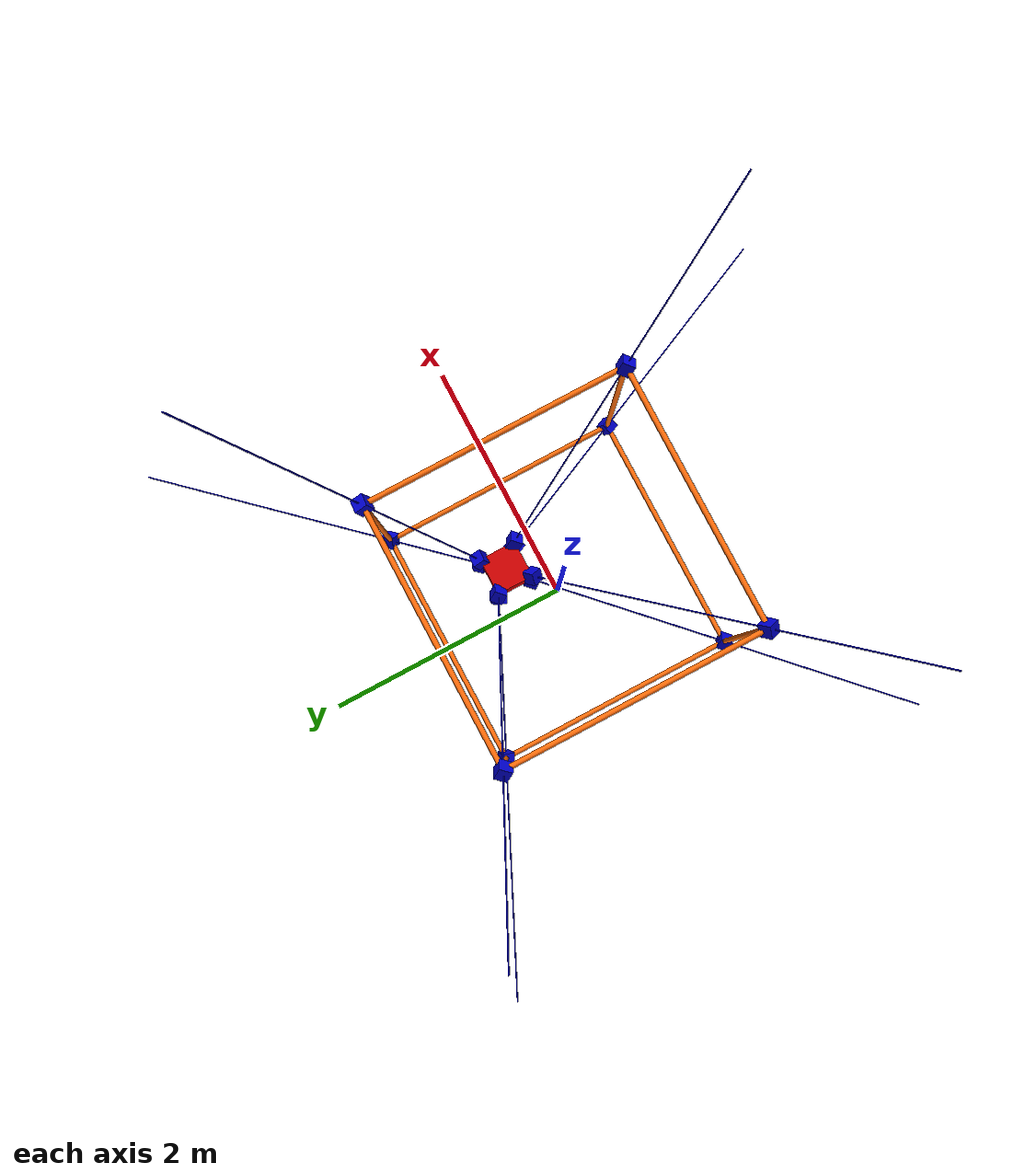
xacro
<?xml version="1.0"?>
<!-- Revolute-Revolute Manipulator -->
<robot name="cdpr" xmlns:xacro="http://www.ros.org/wiki/xacro">

<!-- Ce code permet de générer le cadre du robot, les liaisons entre les parties du cadre et la plateforme-->
<!-- Bien faire gaffe à repercuter les valeurs des paramètres changés ici sur cube1.yaml-->

  <!-- Constants for robot dimensions -->
  <xacro:property name="PI" value="3.1415926535897931" />
  <xacro:property name="cable_mass" value="0.001" />
  <xacro:property name="cable_radius" value="0.001" />
  <xacro:property name="frame_color" value="orange" /> <!-- les couleurs ne fonctionnent pas en fait, que sur urdf viewer -->
  <xacro:property name="frame_lower" value="1.0 1.0 0" />
  <xacro:property name="frame_radius" value="0.02" />
  <xacro:property name="frame_lenght" value="2" />
  <xacro:property name="frame_type" value="box" />

  <xacro:property name="cable_color" value="blue" />

  <xacro:property name="platform_size" value="0.3" />
  <xacro:property name="platform_color" value="red" />
  <xacro:property name="platform_pos_x" value="0.3" />
  <xacro:property name="platform_pos_y" value="0.3" />
  <xacro:property name="platform_pos_z" value="0.5" />
  <xacro:property name="platform_pos_rpy" value="0" />
  <xacro:property name="platform_mass" value="5" />
  <xacro:property name="platform_iaa" value="0.33" /> <!-- ixx iyy izz-->
  <xacro:property name="platform_iab" value="0" />

  <!-- Import all Gazebo-customization elements, including Gazebo colors(au cas ca marcherait un jour) -->
 <xacro:include filename="$(find cdpr)/urdf/cube.gazebo" />
  <!-- Import Rviz colors -->
  <xacro:include filename="$(find cdpr)/urdf/materials.xacro" />
  <xacro:include filename="$(find cdpr)/urdf/cube1.xacro" />

  <!-- Used for fixing robot to Gazebo 'base_link' -->

  <link name="world" />

  <joint name="fixed" type="fixed">
    <parent link="world" />
    <child link="frame_1" />
  </joint>

  <!-- le float n'existe pas en sdf et cette liaison sera transformée en fixed dans gazebo -->
  <!-- Il faut trouver une solution pour le rendre mobile en selectionnant un jeu de liaison qui le lie à world -->

  <joint name="float_platform" type="floating">
    <parent link="world" />
    <child link="platform" />
  </joint>

  <!-- Base Link -->

  <link name="frame_1">
    <collision>
      <origin xyz="${-frame_lenght/2} ${-frame_lenght/2} ${frame_lenght/2}" rpy="0 0 0" />
      <geometry>
        <cylinder radius="${frame_radius}" length="${frame_lenght}" />
      </geometry>
    </collision>
    <visual>
      <origin xyz="${-frame_lenght/2} ${-frame_lenght/2} ${frame_lenght/2}" rpy="0 0 0" />
      <geometry>
        <cylinder radius="${frame_radius}" length="${frame_lenght}" />
      </geometry>
      <material name="${frame_color}" />
    </visual>
    <inertial>
      <origin xyz="${-frame_lenght/2} ${-frame_lenght/2} ${frame_lenght/2}" rpy="0 0 0" />
      <mass value="10000" />
      <inertia ixx="10000" ixy="0.0" ixz="0.0" iyy="10000" iyz="0.0" izz="10000" />
    </inertial>
  </link>

  <link name="frame_2">
    <collision>
      <origin xyz="${-frame_lenght/2} 0 0" rpy="${PI/2} 0 0" />
      <geometry>
        <cylinder radius="${frame_radius}" length="${frame_lenght}" />
      </geometry>
    </collision>
    <visual>
      <origin xyz="${-frame_lenght/2} 0 0" rpy="${PI/2} 0 0" />
      <geometry>
        <cylinder radius="${frame_radius}" length="${frame_lenght}" />
      </geometry>
      <material name="${frame_color}" />
    </visual>
    <inertial>
      <origin xyz="${-frame_lenght/2} 0 0" rpy="${PI/2} 0 0" />
      <mass value="10000" />
      <inertia ixx="10000" ixy="0.0" ixz="0.0" iyy="10000" iyz="0.0" izz="10000" />
    </inertial>
  </link>

  <link name="frame_3">
    <collision>
      <origin xyz="0 ${-frame_lenght/2} 0" rpy="0 ${PI/2} 0" />
      <geometry>
        <cylinder radius="${frame_radius}" length="${frame_lenght}" />
      </geometry>
    </collision>
    <visual>
      <origin xyz="0 ${-frame_lenght/2} 0" rpy="0 ${PI/2} 0" />
      <geometry>
        <cylinder radius="${frame_radius}" length="${frame_lenght}" />
      </geometry>
      <material name="${frame_color}" />
    </visual>
    <inertial>
      <origin xyz="0 ${-frame_lenght/2} 0" rpy="0 ${PI/2} 0" />
      <mass value="10000" />
      <inertia ixx="10000" ixy="0.0" ixz="0.0" iyy="10000" iyz="0.0" izz="10000" />
    </inertial>
  </link>

  <link name="frame_4">
    <collision>
      <origin xyz="${-frame_lenght/2} ${frame_lenght/2} ${frame_lenght/2}" rpy="0 0 0" />
      <geometry>
        <cylinder radius="${frame_radius}" length="${frame_lenght}" />
      </geometry>
    </collision>
    <visual>
      <origin xyz="${-frame_lenght/2} ${frame_lenght/2} ${frame_lenght/2}" rpy="0 0 0" />
      <geometry>
        <cylinder radius="${frame_radius}" length="${frame_lenght}" />
      </geometry>
      <material name="${frame_color}" />
    </visual>
    <inertial>
      <origin xyz="${-frame_lenght/2} ${frame_lenght/2} ${frame_lenght/2}" rpy="0 0 0" />
      <mass value="10000" />
      <inertia ixx="10000" ixy="0.0" ixz="0.0" iyy="10000" iyz="0.0" izz="10000" />
    </inertial>
  </link>

  <link name="frame_5">
    <collision>
      <origin xyz="${frame_lenght/2} ${frame_lenght/2} ${frame_lenght/2}" rpy="0 0 0" />
      <geometry>
        <cylinder radius="${frame_radius}" length="${frame_lenght}" />
      </geometry>
    </collision>
    <visual>
      <origin xyz="${frame_lenght/2} ${frame_lenght/2} ${frame_lenght/2}" rpy="0 0 0" />
      <geometry>
        <cylinder radius="${frame_radius}" length="${frame_lenght}" />
      </geometry>
      <material name="${frame_color}" />
    </visual>
    <inertial>
      <origin xyz="${frame_lenght/2} ${frame_lenght/2} ${frame_lenght/2}" rpy="0 0 0" />
      <mass value="10000" />
      <inertia ixx="10000" ixy="0.0" ixz="0.0" iyy="10000" iyz="0.0" izz="10000" />
    </inertial>
  </link>

  <link name="frame_6">
    <collision>
      <origin xyz="${frame_lenght/2} ${-frame_lenght/2} ${frame_lenght/2}" rpy="0 0 0" />
      <geometry>
        <cylinder radius="${frame_radius}" length="${frame_lenght}" />
      </geometry>
    </collision>
    <visual>
      <origin xyz="${frame_lenght/2} ${-frame_lenght/2} ${frame_lenght/2}" rpy="0 0 0" />
      <geometry>
        <cylinder radius="${frame_radius}" length="${frame_lenght}" />
      </geometry>
      <material name="${frame_color}" />
    </visual>
    <inertial>
      <origin xyz="${frame_lenght/2} ${-frame_lenght/2} ${frame_lenght/2}" rpy="0 0 0" />
      <mass value="10000" />
      <inertia ixx="10000" ixy="0.0" ixz="0.0" iyy="10000" iyz="0.0" izz="10000" />
    </inertial>
  </link>

  <link name="frame_7">
    <collision>
      <origin xyz="0 ${frame_lenght/2} 0" rpy="0 ${-PI/2} 0" />
      <geometry>
        <cylinder radius="${frame_radius}" length="${frame_lenght}" />
      </geometry>
    </collision>
    <visual>
      <origin xyz="0 ${frame_lenght/2} 0" rpy="0 ${-PI/2} 0" />
      <geometry>
        <cylinder radius="${frame_radius}" length="${frame_lenght}" />
      </geometry>
      <material name="${frame_color}" />
    </visual>
    <inertial>
      <origin xyz="0 ${frame_lenght/2} ${frame_lenght/2}" rpy="0 ${-PI/2} 0" />
      <mass value="10000" />
      <inertia ixx="10000" ixy="0.0" ixz="0.0" iyy="10000" iyz="0.0" izz="10000" />
    </inertial>
  </link>

  <link name="frame_8">
    <collision>
      <origin xyz="${frame_lenght/2} 0 0" rpy="0 ${-PI/2} 0" />
      <geometry>
        <cylinder radius="${frame_radius}" length="${frame_lenght}" />
      </geometry>
    </collision>
    <visual>
      <origin xyz="${frame_lenght/2} 0 0" rpy="${-PI/2} 0 0" />
      <geometry>
        <cylinder radius="${frame_radius}" length="${frame_lenght}" />
      </geometry>
      <material name="${frame_color}" />
    </visual>
    <inertial>
      <origin xyz="${frame_lenght/2} 0 0" rpy="0 ${-PI/2} 0" />
      <mass value="10000" />
      <inertia ixx="10000" ixy="0.0" ixz="0.0" iyy="10000" iyz="0.0" izz="10000" />
    </inertial>
  </link>

  <link name="frame_9">
    <collision>
      <origin xyz="${frame_lenght/2} 0 ${frame_lenght}" rpy="0 ${-PI/2} 0" />
      <geometry>
        <cylinder radius="${frame_radius}" length="${frame_lenght}" />
      </geometry>
    </collision>
    <visual>
      <origin xyz="${frame_lenght/2} 0 ${frame_lenght}" rpy="${-PI/2} 0 0" />
      <geometry>
        <cylinder radius="${frame_radius}" length="${frame_lenght}" />
      </geometry>
      <material name="${frame_color}" />
    </visual>
    <inertial>
      <origin xyz="${frame_lenght/2} 0 ${frame_lenght}" rpy="0 ${-PI/2} 0" />
      <mass value="10000" />
      <inertia ixx="10000" ixy="0.0" ixz="0.0" iyy="10000" iyz="0.0" izz="10000" />
    </inertial>
  </link>

  <link name="frame_10">
    <collision>
      <origin xyz="0 ${frame_lenght/2} ${frame_lenght}" rpy="0 ${-PI/2} 0" />
      <geometry>
        <cylinder radius="${frame_radius}" length="${frame_lenght}" />
      </geometry>
    </collision>
    <visual>
      <origin xyz="0 ${frame_lenght/2} ${frame_lenght}" rpy="0 ${-PI/2} 0" />
      <geometry>
        <cylinder radius="${frame_radius}" length="${frame_lenght}" />
      </geometry>
      <material name="${frame_color}" />
    </visual>
    <inertial>
      <origin xyz="0 ${frame_lenght/2} ${frame_lenght}" rpy="0 ${-PI/2} 0" />
      <mass value="10000" />
      <inertia ixx="10000" ixy="0.0" ixz="0.0" iyy="10000" iyz="0.0" izz="10000" />
    </inertial>
  </link>

  <link name="frame_11">
    <collision>
      <origin xyz="${-frame_lenght/2} 0 ${frame_lenght}" rpy="${PI/2} 0 0" />
      <geometry>
        <cylinder radius="${frame_radius}" length="${frame_lenght}" />
      </geometry>
    </collision>
    <visual>
      <origin xyz="${-frame_lenght/2} 0 ${frame_lenght}" rpy="${PI/2} 0 0" />
      <geometry>
        <cylinder radius="${frame_radius}" length="${frame_lenght}" />
      </geometry>
      <material name="${frame_color}" />
    </visual>
    <inertial>
      <origin xyz="${-frame_lenght/2} 0 ${frame_lenght}" rpy="${PI/2} 0 0" />
      <mass value="10000" />
      <inertia ixx="10000" ixy="0.0" ixz="0.0" iyy="10000" iyz="0.0" izz="10000" />
    </inertial>
  </link>

  <link name="frame_12">
    <collision>
      <origin xyz="0 ${-frame_lenght/2} ${frame_lenght}" rpy="0 ${PI/2} 0" />
      <geometry>
        <cylinder radius="${frame_radius}" length="${frame_lenght}" />
      </geometry>
    </collision>
    <visual>
      <origin xyz="0 ${-frame_lenght/2} ${frame_lenght}" rpy="0 ${PI/2} 0" />
      <geometry>
        <cylinder radius="${frame_radius}" length="${frame_lenght}" />
      </geometry>
      <material name="${frame_color}" />
    </visual>
    <inertial>
      <origin xyz="0 ${-frame_lenght/2} ${frame_lenght}" rpy="0 ${PI/2} 0" />
      <mass value="10000" />
      <inertia ixx="10000" ixy="0.0" ixz="0.0" iyy="10000" iyz="0.0" izz="10000" />
    </inertial>
  </link>

  <link name="platform">
    <collision>
      <origin xyz="${platform_pos_x} ${platform_pos_y} ${platform_pos_z}" rpy="${platform_pos_rpy} ${platform_pos_rpy} ${platform_pos_rpy}" />
      <geometry>
        <box size="${platform_size} ${platform_size} ${platform_size}" />
      </geometry>
    </collision>
    <visual>
      <origin xyz="${platform_pos_x} ${platform_pos_y} ${platform_pos_z}" rpy="${platform_pos_rpy} ${platform_pos_rpy} ${platform_pos_rpy}" />
      <geometry>
        <box size="${platform_size} ${platform_size} ${platform_size}" />
      </geometry>
      <material name="${platform_color}" />
    </visual>
    <inertial>
      <origin xyz="${platform_pos_x} ${platform_pos_y} ${platform_pos_z}" rpy="${platform_pos_rpy} ${platform_pos_rpy} ${platform_pos_rpy}" />
      <mass value="${platform_mass}" />
      <inertia ixx="${platform_iaa}" ixy="${platform_iab}" ixz="${platform_iab}" iyy="${platform_iaa}" iyz="${platform_iab}" izz="${platform_iaa}" />
    </inertial>
  </link>

<xacro:macro name="default_joint" params="num1 num2"> <!-- définit une macro de liaison entre les parties du cube -->
  <joint name="fixed${num1}" type="fixed">
    <parent link="frame_${num2}" />
    <child link="frame_${num1}" />
  </joint>
</xacro:macro>

<xacro:macro name="loop" params="links_qty"> <!-- permet d'executer la macro en boucle -->
  <xacro:default_joint num1="${links_qty+2}" num2="${links_qty+1}"/>
    <xacro:if value="${links_qty}">
        <xacro:loop links_qty="${links_qty-1}" />
    </xacro:if>
</xacro:macro>

<!-- Ne sert plus mais permettait de fixer les cables au cadre pour tester les liaisons -->
<xacro:macro name="default_joint_cable" params="num1">
  <joint name="cable_fixed${num1}" type="floating">
    <parent link="frame_1" />
    <child link="cable${num1-1}" />
  </joint>
</xacro:macro>

<xacro:macro name="loop2" params="links_qty">
  <xacro:default_joint_cable num1="${links_qty+1}" />
    <xacro:if value="${links_qty}">
        <xacro:loop2 links_qty="${links_qty-1}" />
    </xacro:if>
</xacro:macro>

<xacro:loop links_qty="10" /> <!-- execute la macro -->

</robot>

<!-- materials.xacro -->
<robot name="cdpr">

  <material name="black">
    <color rgba="0.0 0.0 0.0 1.0"/>
  </material>

  <material name="blue">
    <color rgba="0.0 0.0 0.8 1.0"/>
  </material>

  <material name="green">
    <color rgba="0.0 0.8 0.0 1.0"/>
  </material>

  <material name="grey">
    <color rgba="0.2 0.2 0.2 1.0"/>
  </material>

  <material name="orange">
    <color rgba="${255/255} ${108/255} ${10/255} 1.0"/>
  </material>

  <material name="brown">
    <color rgba="${222/255} ${207/255} ${195/255} 1.0"/>
  </material>

  <material name="red">
    <color rgba="0.8 0.0 0.0 1.0"/>
  </material>

  <material name="white">
    <color rgba="1.0 1.0 1.0 1.0"/>
  </material>

</robot>

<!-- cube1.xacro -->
<robot>

	<!--Definition of the robot cables-->

	<link name="cable0">

		<collision>

			<origin xyz="0 0 0.3815953312159479" rpy="0 0 0"/>

			<geometry>

				<cylinder radius="0.005" length="3.4641016151377544"/>

			</geometry>

		</collision>

		<visual>

			<origin xyz="0 0 0.3815953312159479" rpy="0 0 0"/>

			<geometry>

				<cylinder radius="0.005" length="3.4641016151377544"/>

			</geometry>

			<material name="${cable_color}"/>

		</visual>

		<inertial>

			<origin xyz="0 0 0.3815953312159479" rpy="0 0 0"/>

			<geometry>

				<cylinder radius="0.005" length="3.4641016151377544"/>

			</geometry>

			<inertia ixx="0.001" ixy="0" ixz="0" iyy="0.001" iyz="0" izz="0.001"/>

			<mass value="0.001"/>

		</inertial>

	</link>

	<link name="virt_X0">

		<inertial>

			<mass value="0.001"/>

			<inertia ixx="0.001" ixy="0" ixz="0" iyy="0.001" iyz="0" izz="0.001"/>

			<origin xyz="0 0 0" rpy="0 0 0"/>

		</inertial>

		<visual>

			<geometry>

				<box size="0.1 0.1 0.1"/>

			</geometry>

			<material name="${cable_color}"/>

			<origin xyz="0 0 0" rpy="0 0 0"/>

		</visual>

	</link>

	<joint name="rev_X0" type="revolute">

		<origin xyz="-1.000000 -1.000000 2.000000" rpy="-2.436024 0.575296 -1.353793"/>

		<parent link="frame_1"/>

		<child link="virt_X0"/>

		<axis xyz="0.180647 -0.819353 -0.544084"/>

		<limit effort="10000" velocity="0.25"/>

		<limit damping="0.1"/>

	</joint>

	<link name="virt_Y0">

		<inertial>

			<origin xyz="0 0 0" rpy="0 0 0"/>

			<mass value="0.001"/>

			<inertia ixx="0.001" ixy="0" ixz="0" iyy="0.001" iyz="0" izz="0.001"/>

		</inertial>

		<visual>

			<origin xyz="0 0 0" rpy="0 0 0"/>

			<geometry>

				<box size="0.1 0.1 0.1"/>

			</geometry>

			<material name="${cable_color}"/>

		</visual>

	</link>

	<joint name="rev_Y0" type="revolute">

		<origin xyz="0 0 0" rpy="0 0 0"/>

		<parent link="virt_X0"/>

		<child link="virt_Y0"/>

		<axis xyz="-0.819353 0.180647 -0.544084"/>

		<limit effort="10000" velocity="0.25"/>

		<limit damping="0.1"/>

	</joint>

	<joint name="joint_cable0" type="prismatic">

		<origin xyz="0 0 0" rpy="0 0 0"/>

		<parent link="virt_Y0"/>

		<child link="cable0"/>

		<axis xyz="-0.544084 -0.544084 0.638707"/>

		<limit lower="-1.7320508075688772" upper="1.7320508075688772" effort="10000" velocity="0.25"/>

		<limit damping="0.1"/>

		<origin xyz="0 0 0" rpy="-2.436024 0.575296 -1.353793"/>

	</joint>

	<link name="virt_Xpf0">

		<inertial>

			<origin xyz="0.150000 0.150000 0.650000" rpy="-2.436024 0.575296 -1.353793"/>

			<mass value="0.001"/>

			<inertia ixx="0.001" ixy="0" ixz="0" iyy="0.001" iyz="0" izz="0.001"/>

		</inertial>

		<visual>

			<origin xyz="0.150000 0.150000 0.650000" rpy="-2.436024 0.575296 -1.353793"/>

			<geometry>

				<box size="0.1 0.1 0.1"/>

			</geometry>

			<material name="${cable_color}"/>

			<origin xyz="0.150000 0.150000 0.650000" rpy="-2.436024 0.575296 -1.353793"/>

			<geometry>

				<box size="0.1 0.1 0.1"/>

			</geometry>

			<material name="${cable_color}"/>

		</visual>

	</link>

	<joint name="rev_Xpf0" type="revolute">

		<origin xyz="0 0 0" rpy="0 0 0"/>

		<parent link="platform"/>

		<child link="virt_Xpf0"/>

		<axis xyz="1 0 0"/>

		<limit effort="10000" velocity="0.25"/>

		<limit damping="0.1"/>

	</joint>

	<link name="virt_Ypf0">

		<inertial>

			<origin xyz="0 0 0" rpy="0 0 0"/>

			<mass value="0.001"/>

			<inertia ixx="0.001" ixy="0" ixz="0" iyy="0.001" iyz="0" izz="0.001"/>

		</inertial>

	</link>

	<joint name="rev_Zpf0" type="revolute">

		<origin xyz="0 0 1.7320508075688772" rpy="0 0 0"/>

		<parent link="cable0"/>

		<child link="virt_Ypf0"/>

		<axis xyz="0 0 1"/>

		<limit effort="10000" velocity="0.25"/>

		<limit damping="0.1"/>

	</joint>

	<gazebo>

		<joint name="rev_Ypf0" type="revolute">

			<pose>0 0 0 -2.436024 0.575296 -1.353793</pose>

			<parent>virt_Xpf0</parent>

			<child>virt_Ypf0</child>

			<axis>

				<xyz>0 1 0</xyz>

				<limit>

					<effort>10000</effort>

					<velocity>0.25</velocity>

				</limit>

				<dynamics>

					<damping>0.1</damping>

				</dynamics>

			</axis>

		</joint>

	</gazebo>

	<gazebo reference="cable0">

		<material>Gazebo/Red</material>

	</gazebo>

	<gazebo reference="cable0">

		<material>Gazebo/Red</material>

	</gazebo>

	<link name="cable1">

		<collision>

			<origin xyz="0 0 0.1246936551938369" rpy="0 0 0"/>

			<geometry>

				<cylinder radius="0.005" length="3.4641016151377544"/>

			</geometry>

		</collision>

		<visual>

			<origin xyz="0 0 0.1246936551938369" rpy="0 0 0"/>

			<geometry>

				<cylinder radius="0.005" length="3.4641016151377544"/>

			</geometry>

			<material name="${cable_color}"/>

		</visual>

		<inertial>

			<origin xyz="0 0 0.1246936551938369" rpy="0 0 0"/>

			<geometry>

				<cylinder radius="0.005" length="3.4641016151377544"/>

			</geometry>

			<inertia ixx="0.001" ixy="0" ixz="0" iyy="0.001" iyz="0" izz="0.001"/>

			<mass value="0.001"/>

		</inertial>

	</link>

	<link name="virt_X1">

		<inertial>

			<mass value="0.001"/>

			<inertia ixx="0.001" ixy="0" ixz="0" iyy="0.001" iyz="0" izz="0.001"/>

			<origin xyz="0 0 0" rpy="0 0 0"/>

		</inertial>

		<visual>

			<geometry>

				<box size="0.1 0.1 0.1"/>

			</geometry>

			<material name="${cable_color}"/>

			<origin xyz="0 0 0" rpy="0 0 0"/>

		</visual>

	</link>

	<joint name="rev_X1" type="revolute">

		<origin xyz="-1.000000 1.000000 2.000000" rpy="2.754717 0.667932 2.113659"/>

		<parent link="frame_1"/>

		<child link="virt_X1"/>

		<axis xyz="-0.405577 0.672232 -0.619364"/>

		<limit effort="10000" velocity="0.25"/>

		<limit damping="0.1"/>

	</joint>

	<link name="virt_Y1">

		<inertial>

			<origin xyz="0 0 0" rpy="0 0 0"/>

			<mass value="0.001"/>

			<inertia ixx="0.001" ixy="0" ixz="0" iyy="0.001" iyz="0" izz="0.001"/>

		</inertial>

		<visual>

			<origin xyz="0 0 0" rpy="0 0 0"/>

			<geometry>

				<box size="0.1 0.1 0.1"/>

			</geometry>

			<material name="${cable_color}"/>

		</visual>

	</link>

	<joint name="rev_Y1" type="revolute">

		<origin xyz="0 0 0" rpy="0 0 0"/>

		<parent link="virt_X1"/>

		<child link="virt_Y1"/>

		<axis xyz="0.672232 0.678498 0.296217"/>

		<limit effort="10000" velocity="0.25"/>

		<limit damping="0.1"/>

	</joint>

	<joint name="joint_cable1" type="prismatic">

		<origin xyz="0 0 0" rpy="0 0 0"/>

		<parent link="virt_Y1"/>

		<child link="cable1"/>

		<axis xyz="-0.619364 0.296217 0.727079"/>

		<limit lower="-1.7320508075688772" upper="1.7320508075688772" effort="10000" velocity="0.25"/>

		<limit damping="0.1"/>

		<origin xyz="0 0 0" rpy="2.754717 0.667932 2.113659"/>

	</joint>

	<link name="virt_Xpf1">

		<inertial>

			<origin xyz="0.150000 0.450000 0.650000" rpy="2.754717 0.667932 2.113659"/>

			<mass value="0.001"/>

			<inertia ixx="0.001" ixy="0" ixz="0" iyy="0.001" iyz="0" izz="0.001"/>

		</inertial>

		<visual>

			<origin xyz="0.150000 0.450000 0.650000" rpy="2.754717 0.667932 2.113659"/>

			<geometry>

				<box size="0.1 0.1 0.1"/>

			</geometry>

			<material name="${cable_color}"/>

			<origin xyz="0.150000 0.450000 0.650000" rpy="2.754717 0.667932 2.113659"/>

			<geometry>

				<box size="0.1 0.1 0.1"/>

			</geometry>

			<material name="${cable_color}"/>

		</visual>

	</link>

	<joint name="rev_Xpf1" type="revolute">

		<origin xyz="0 0 0" rpy="0 0 0"/>

		<parent link="platform"/>

		<child link="virt_Xpf1"/>

		<axis xyz="1 0 0"/>

		<limit effort="10000" velocity="0.25"/>

		<limit damping="0.1"/>

	</joint>

	<link name="virt_Ypf1">

		<inertial>

			<origin xyz="0 0 0" rpy="0 0 0"/>

			<mass value="0.001"/>

			<inertia ixx="0.001" ixy="0" ixz="0" iyy="0.001" iyz="0" izz="0.001"/>

		</inertial>

	</link>

	<joint name="rev_Zpf1" type="revolute">

		<origin xyz="0 0 1.7320508075688772" rpy="0 0 0"/>

		<parent link="cable1"/>

		<child link="virt_Ypf1"/>

		<axis xyz="0 0 1"/>

		<limit effort="10000" velocity="0.25"/>

		<limit damping="0.1"/>

	</joint>

	<gazebo>

		<joint name="rev_Ypf1" type="revolute">

			<pose>0 0 0 2.754717 0.667932 2.113659</pose>

			<parent>virt_Xpf1</parent>

			<child>virt_Ypf1</child>

			<axis>

				<xyz>0 1 0</xyz>

				<limit>

					<effort>10000</effort>

					<velocity>0.25</velocity>

				</limit>

				<dynamics>

					<damping>0.1</damping>

				</dynamics>

			</axis>

		</joint>

	</gazebo>

	<gazebo reference="cable1">

		<material>Gazebo/Red</material>

	</gazebo>

	<gazebo reference="cable1">

		<material>Gazebo/Red</material>

	</gazebo>

	<link name="cable2">

		<collision>

			<origin xyz="0 0 -0.17400716248058878" rpy="0 0 0"/>

			<geometry>

				<cylinder radius="0.005" length="3.4641016151377544"/>

			</geometry>

		</collision>

		<visual>

			<origin xyz="0 0 -0.17400716248058878" rpy="0 0 0"/>

			<geometry>

				<cylinder radius="0.005" length="3.4641016151377544"/>

			</geometry>

			<material name="${cable_color}"/>

		</visual>

		<inertial>

			<origin xyz="0 0 -0.17400716248058878" rpy="0 0 0"/>

			<geometry>

				<cylinder radius="0.005" length="3.4641016151377544"/>

			</geometry>

			<inertia ixx="0.001" ixy="0" ixz="0" iyy="0.001" iyz="0" izz="0.001"/>

			<mass value="0.001"/>

		</inertial>

	</link>

	<link name="virt_X2">

		<inertial>

			<mass value="0.001"/>

			<inertia ixx="0.001" ixy="0" ixz="0" iyy="0.001" iyz="0" izz="0.001"/>

			<origin xyz="0 0 0" rpy="0 0 0"/>

		</inertial>

		<visual>

			<geometry>

				<box size="0.1 0.1 0.1"/>

			</geometry>

			<material name="${cable_color}"/>

			<origin xyz="0 0 0" rpy="0 0 0"/>

		</visual>

	</link>

	<joint name="rev_X2" type="revolute">

		<origin xyz="1.000000 1.000000 2.000000" rpy="2.754717 -0.360783 -1.499377"/>

		<parent link="frame_1"/>

		<child link="virt_X2"/>

		<axis xyz="0.066764 -0.933236 0.353007"/>

		<limit effort="10000" velocity="0.25"/>

		<limit damping="0.1"/>

	</joint>

	<link name="virt_Y2">

		<inertial>

			<origin xyz="0 0 0" rpy="0 0 0"/>

			<mass value="0.001"/>

			<inertia ixx="0.001" ixy="0" ixz="0" iyy="0.001" iyz="0" izz="0.001"/>

		</inertial>

		<visual>

			<origin xyz="0 0 0" rpy="0 0 0"/>

			<geometry>

				<box size="0.1 0.1 0.1"/>

			</geometry>

			<material name="${cable_color}"/>

		</visual>

	</link>

	<joint name="rev_Y2" type="revolute">

		<origin xyz="0 0 0" rpy="0 0 0"/>

		<parent link="virt_X2"/>

		<child link="virt_Y2"/>

		<axis xyz="-0.933236 0.066764 0.353007"/>

		<limit effort="10000" velocity="0.25"/>

		<limit damping="0.1"/>

	</joint>

	<joint name="joint_cable2" type="prismatic">

		<origin xyz="0 0 0" rpy="0 0 0"/>

		<parent link="virt_Y2"/>

		<child link="cable2"/>

		<axis xyz="0.353007 0.353007 0.866471"/>

		<limit lower="-1.7320508075688772" upper="1.7320508075688772" effort="10000" velocity="0.25"/>

		<limit damping="0.1"/>

		<origin xyz="0 0 0" rpy="2.754717 -0.360783 -1.499377"/>

	</joint>

	<link name="virt_Xpf2">

		<inertial>

			<origin xyz="0.450000 0.450000 0.650000" rpy="2.754717 -0.360783 -1.499377"/>

			<mass value="0.001"/>

			<inertia ixx="0.001" ixy="0" ixz="0" iyy="0.001" iyz="0" izz="0.001"/>

		</inertial>

		<visual>

			<origin xyz="0.450000 0.450000 0.650000" rpy="2.754717 -0.360783 -1.499377"/>

			<geometry>

				<box size="0.1 0.1 0.1"/>

			</geometry>

			<material name="${cable_color}"/>

			<origin xyz="0.450000 0.450000 0.650000" rpy="2.754717 -0.360783 -1.499377"/>

			<geometry>

				<box size="0.1 0.1 0.1"/>

			</geometry>

			<material name="${cable_color}"/>

		</visual>

	</link>

	<joint name="rev_Xpf2" type="revolute">

		<origin xyz="0 0 0" rpy="0 0 0"/>

		<parent link="platform"/>

		<child link="virt_Xpf2"/>

		<axis xyz="1 0 0"/>

		<limit effort="10000" velocity="0.25"/>

		<limit damping="0.1"/>

	</joint>

	<link name="virt_Ypf2">

		<inertial>

			<origin xyz="0 0 0" rpy="0 0 0"/>

			<mass value="0.001"/>

			<inertia ixx="0.001" ixy="0" ixz="0" iyy="0.001" iyz="0" izz="0.001"/>

		</inertial>

	</link>

	<joint name="rev_Zpf2" type="revolute">

		<origin xyz="0 0 1.7320508075688772" rpy="0 0 0"/>

		<parent link="cable2"/>

		<child link="virt_Ypf2"/>

		<axis xyz="0 0 1"/>

		<limit effort="10000" velocity="0.25"/>

		<limit damping="0.1"/>

	</joint>

	<gazebo>

		<joint name="rev_Ypf2" type="revolute">

			<pose>0 0 0 2.754717 -0.360783 -1.499377</pose>

			<parent>virt_Xpf2</parent>

			<child>virt_Ypf2</child>

			<axis>

				<xyz>0 1 0</xyz>

				<limit>

					<effort>10000</effort>

					<velocity>0.25</velocity>

				</limit>

				<dynamics>

					<damping>0.1</damping>

				</dynamics>

			</axis>

		</joint>

	</gazebo>

	<gazebo reference="cable2">

		<material>Gazebo/Red</material>

	</gazebo>

	<gazebo reference="cable2">

		<material>Gazebo/Red</material>

	</gazebo>

	<link name="cable3">

		<collision>

			<origin xyz="0 0 0.1246936551938369" rpy="0 0 0"/>

			<geometry>

				<cylinder radius="0.005" length="3.4641016151377544"/>

			</geometry>

		</collision>

		<visual>

			<origin xyz="0 0 0.1246936551938369" rpy="0 0 0"/>

			<geometry>

				<cylinder radius="0.005" length="3.4641016151377544"/>

			</geometry>

			<material name="${cable_color}"/>

		</visual>

		<inertial>

			<origin xyz="0 0 0.1246936551938369" rpy="0 0 0"/>

			<geometry>

				<cylinder radius="0.005" length="3.4641016151377544"/>

			</geometry>

			<inertia ixx="0.001" ixy="0" ixz="0" iyy="0.001" iyz="0" izz="0.001"/>

			<mass value="0.001"/>

		</inertial>

	</link>

	<link name="virt_X3">

		<inertial>

			<mass value="0.001"/>

			<inertia ixx="0.001" ixy="0" ixz="0" iyy="0.001" iyz="0" izz="0.001"/>

			<origin xyz="0 0 0" rpy="0 0 0"/>

		</inertial>

		<visual>

			<geometry>

				<box size="0.1 0.1 0.1"/>

			</geometry>

			<material name="${cable_color}"/>

			<origin xyz="0 0 0" rpy="0 0 0"/>

		</visual>

	</link>

	<joint name="rev_X3" type="revolute">

		<origin xyz="1.000000 -1.000000 2.000000" rpy="-2.436024 -0.300730 0.780760"/>

		<parent link="frame_1"/>

		<child link="virt_X3"/>

		<axis xyz="0.678498 0.672232 0.296217"/>

		<limit effort="10000" velocity="0.25"/>

		<limit damping="0.1"/>

	</joint>

	<link name="virt_Y3">

		<inertial>

			<origin xyz="0 0 0" rpy="0 0 0"/>

			<mass value="0.001"/>

			<inertia ixx="0.001" ixy="0" ixz="0" iyy="0.001" iyz="0" izz="0.001"/>

		</inertial>

		<visual>

			<origin xyz="0 0 0" rpy="0 0 0"/>

			<geometry>

				<box size="0.1 0.1 0.1"/>

			</geometry>

			<material name="${cable_color}"/>

		</visual>

	</link>

	<joint name="rev_Y3" type="revolute">

		<origin xyz="0 0 0" rpy="0 0 0"/>

		<parent link="virt_X3"/>

		<child link="virt_Y3"/>

		<axis xyz="0.672232 -0.405577 -0.619364"/>

		<limit effort="10000" velocity="0.25"/>

		<limit damping="0.1"/>

	</joint>

	<joint name="joint_cable3" type="prismatic">

		<origin xyz="0 0 0" rpy="0 0 0"/>

		<parent link="virt_Y3"/>

		<child link="cable3"/>

		<axis xyz="0.296217 -0.619364 0.727079"/>

		<limit lower="-1.7320508075688772" upper="1.7320508075688772" effort="10000" velocity="0.25"/>

		<limit damping="0.1"/>

		<origin xyz="0 0 0" rpy="-2.436024 -0.300730 0.780760"/>

	</joint>

	<link name="virt_Xpf3">

		<inertial>

			<origin xyz="0.450000 0.150000 0.650000" rpy="-2.436024 -0.300730 0.780760"/>

			<mass value="0.001"/>

			<inertia ixx="0.001" ixy="0" ixz="0" iyy="0.001" iyz="0" izz="0.001"/>

		</inertial>

		<visual>

			<origin xyz="0.450000 0.150000 0.650000" rpy="-2.436024 -0.300730 0.780760"/>

			<geometry>

				<box size="0.1 0.1 0.1"/>

			</geometry>

			<material name="${cable_color}"/>

			<origin xyz="0.450000 0.150000 0.650000" rpy="-2.436024 -0.300730 0.780760"/>

			<geometry>

				<box size="0.1 0.1 0.1"/>

			</geometry>

			<material name="${cable_color}"/>

		</visual>

	</link>

	<joint name="rev_Xpf3" type="revolute">

		<origin xyz="0 0 0" rpy="0 0 0"/>

		<parent link="platform"/>

		<child link="virt_Xpf3"/>

		<axis xyz="1 0 0"/>

		<limit effort="10000" velocity="0.25"/>

		<limit damping="0.1"/>

	</joint>

	<link name="virt_Ypf3">

		<inertial>

			<origin xyz="0 0 0" rpy="0 0 0"/>

			<mass value="0.001"/>

			<inertia ixx="0.001" ixy="0" ixz="0" iyy="0.001" iyz="0" izz="0.001"/>

		</inertial>

	</link>

	<joint name="rev_Zpf3" type="revolute">

		<origin xyz="0 0 1.7320508075688772" rpy="0 0 0"/>

		<parent link="cable3"/>

		<child link="virt_Ypf3"/>

		<axis xyz="0 0 1"/>

		<limit effort="10000" velocity="0.25"/>

		<limit damping="0.1"/>

	</joint>

	<gazebo>

		<joint name="rev_Ypf3" type="revolute">

			<pose>0 0 0 -2.436024 -0.300730 0.780760</pose>

			<parent>virt_Xpf3</parent>

			<child>virt_Ypf3</child>

			<axis>

				<xyz>0 1 0</xyz>

				<limit>

					<effort>10000</effort>

					<velocity>0.25</velocity>

				</limit>

				<dynamics>

					<damping>0.1</damping>

				</dynamics>

			</axis>

		</joint>

	</gazebo>

	<gazebo reference="cable3">

		<material>Gazebo/Red</material>

	</gazebo>

	<gazebo reference="cable3">

		<material>Gazebo/Red</material>

	</gazebo>

	<link name="cable4">

		<collision>

			<origin xyz="0 0 -0.06847033160746463" rpy="0 0 0"/>

			<geometry>

				<cylinder radius="0.005" length="3.4641016151377544"/>

			</geometry>

		</collision>

		<visual>

			<origin xyz="0 0 -0.06847033160746463" rpy="0 0 0"/>

			<geometry>

				<cylinder radius="0.005" length="3.4641016151377544"/>

			</geometry>

			<material name="${cable_color}"/>

		</visual>

		<inertial>

			<origin xyz="0 0 -0.06847033160746463" rpy="0 0 0"/>

			<geometry>

				<cylinder radius="0.005" length="3.4641016151377544"/>

			</geometry>

			<inertia ixx="0.001" ixy="0" ixz="0" iyy="0.001" iyz="0" izz="0.001"/>

			<mass value="0.001"/>

		</inertial>

	</link>

	<link name="virt_X4">

		<inertial>

			<mass value="0.001"/>

			<inertia ixx="0.001" ixy="0" ixz="0" iyy="0.001" iyz="0" izz="0.001"/>

			<origin xyz="0 0 0" rpy="0 0 0"/>

		</inertial>

		<visual>

			<geometry>

				<box size="0.1 0.1 0.1"/>

			</geometry>

			<material name="${cable_color}"/>

			<origin xyz="0 0 0" rpy="0 0 0"/>

		</visual>

	</link>

	<joint name="rev_X4" type="revolute">

		<origin xyz="-1.000000 -1.000000 0.000000" rpy="-1.275355 0.763259 -0.578033"/>

		<parent link="frame_1"/>

		<child link="virt_X4"/>

		<axis xyz="0.605195 -0.394805 -0.691280"/>

		<limit effort="10000" velocity="0.25"/>

		<limit damping="0.1"/>

	</joint>

	<link name="virt_Y4">

		<inertial>

			<origin xyz="0 0 0" rpy="0 0 0"/>

			<mass value="0.001"/>

			<inertia ixx="0.001" ixy="0" ixz="0" iyy="0.001" iyz="0" izz="0.001"/>

		</inertial>

		<visual>

			<origin xyz="0 0 0" rpy="0 0 0"/>

			<geometry>

				<box size="0.1 0.1 0.1"/>

			</geometry>

			<material name="${cable_color}"/>

		</visual>

	</link>

	<joint name="rev_Y4" type="revolute">

		<origin xyz="0 0 0" rpy="0 0 0"/>

		<parent link="virt_X4"/>

		<child link="virt_Y4"/>

		<axis xyz="-0.394805 0.605195 -0.691280"/>

		<limit effort="10000" velocity="0.25"/>

		<limit damping="0.1"/>

	</joint>

	<joint name="joint_cable4" type="prismatic">

		<origin xyz="0 0 0" rpy="0 0 0"/>

		<parent link="virt_Y4"/>

		<child link="cable4"/>

		<axis xyz="-0.691280 -0.691280 -0.210390"/>

		<limit lower="-1.7320508075688772" upper="1.7320508075688772" effort="10000" velocity="0.25"/>

		<limit damping="0.1"/>

		<origin xyz="0 0 0" rpy="-1.275355 0.763259 -0.578033"/>

	</joint>

	<link name="virt_Xpf4">

		<inertial>

			<origin xyz="0.150000 0.150000 0.350000" rpy="-1.275355 0.763259 -0.578033"/>

			<mass value="0.001"/>

			<inertia ixx="0.001" ixy="0" ixz="0" iyy="0.001" iyz="0" izz="0.001"/>

		</inertial>

		<visual>

			<origin xyz="0.150000 0.150000 0.350000" rpy="-1.275355 0.763259 -0.578033"/>

			<geometry>

				<box size="0.1 0.1 0.1"/>

			</geometry>

			<material name="${cable_color}"/>

			<origin xyz="0.150000 0.150000 0.350000" rpy="-1.275355 0.763259 -0.578033"/>

			<geometry>

				<box size="0.1 0.1 0.1"/>

			</geometry>

			<material name="${cable_color}"/>

		</visual>

	</link>

	<joint name="rev_Xpf4" type="revolute">

		<origin xyz="0 0 0" rpy="0 0 0"/>

		<parent link="platform"/>

		<child link="virt_Xpf4"/>

		<axis xyz="1 0 0"/>

		<limit effort="10000" velocity="0.25"/>

		<limit damping="0.1"/>

	</joint>

	<link name="virt_Ypf4">

		<inertial>

			<origin xyz="0 0 0" rpy="0 0 0"/>

			<mass value="0.001"/>

			<inertia ixx="0.001" ixy="0" ixz="0" iyy="0.001" iyz="0" izz="0.001"/>

		</inertial>

	</link>

	<joint name="rev_Zpf4" type="revolute">

		<origin xyz="0 0 1.7320508075688772" rpy="0 0 0"/>

		<parent link="cable4"/>

		<child link="virt_Ypf4"/>

		<axis xyz="0 0 1"/>

		<limit effort="10000" velocity="0.25"/>

		<limit damping="0.1"/>

	</joint>

	<gazebo>

		<joint name="rev_Ypf4" type="revolute">

			<pose>0 0 0 -1.275355 0.763259 -0.578033</pose>

			<parent>virt_Xpf4</parent>

			<child>virt_Ypf4</child>

			<axis>

				<xyz>0 1 0</xyz>

				<limit>

					<effort>10000</effort>

					<velocity>0.25</velocity>

				</limit>

				<dynamics>

					<damping>0.1</damping>

				</dynamics>

			</axis>

		</joint>

	</gazebo>

	<gazebo reference="cable4">

		<material>Gazebo/Red</material>

	</gazebo>

	<gazebo reference="cable4">

		<material>Gazebo/Red</material>

	</gazebo>

	<link name="cable5">

		<collision>

			<origin xyz="0 0 -0.41012040092864877" rpy="0 0 0"/>

			<geometry>

				<cylinder radius="0.005" length="3.4641016151377544"/>

			</geometry>

		</collision>

		<visual>

			<origin xyz="0 0 -0.41012040092864877" rpy="0 0 0"/>

			<geometry>

				<cylinder radius="0.005" length="3.4641016151377544"/>

			</geometry>

			<material name="${cable_color}"/>

		</visual>

		<inertial>

			<origin xyz="0 0 -0.41012040092864877" rpy="0 0 0"/>

			<geometry>

				<cylinder radius="0.005" length="3.4641016151377544"/>

			</geometry>

			<inertia ixx="0.001" ixy="0" ixz="0" iyy="0.001" iyz="0" izz="0.001"/>

			<mass value="0.001"/>

		</inertial>

	</link>

	<link name="virt_X5">

		<inertial>

			<mass value="0.001"/>

			<inertia ixx="0.001" ixy="0" ixz="0" iyy="0.001" iyz="0" izz="0.001"/>

			<origin xyz="0 0 0" rpy="0 0 0"/>

		</inertial>

		<visual>

			<geometry>

				<box size="0.1 0.1 0.1"/>

			</geometry>

			<material name="${cable_color}"/>

			<origin xyz="0 0 0" rpy="0 0 0"/>

		</visual>

	</link>

	<joint name="rev_X5" type="revolute">

		<origin xyz="-1.000000 1.000000 0.000000" rpy="1.004067 1.055080 0.619089"/>

		<parent link="frame_1"/>

		<child link="virt_X5"/>

		<axis xyz="0.401631 0.286176 -0.869940"/>

		<limit effort="10000" velocity="0.25"/>

		<limit damping="0.1"/>

	</joint>

	<link name="virt_Y5">

		<inertial>

			<origin xyz="0 0 0" rpy="0 0 0"/>

			<mass value="0.001"/>

			<inertia ixx="0.001" ixy="0" ixz="0" iyy="0.001" iyz="0" izz="0.001"/>

		</inertial>

		<visual>

			<origin xyz="0 0 0" rpy="0 0 0"/>

			<geometry>

				<box size="0.1 0.1 0.1"/>

			</geometry>

			<material name="${cable_color}"/>

		</visual>

	</link>

	<joint name="rev_Y5" type="revolute">

		<origin xyz="0 0 0" rpy="0 0 0"/>

		<parent link="virt_X5"/>

		<child link="virt_Y5"/>

		<axis xyz="0.286176 0.863133 0.416058"/>

		<limit effort="10000" velocity="0.25"/>

		<limit damping="0.1"/>

	</joint>

	<joint name="joint_cable5" type="prismatic">

		<origin xyz="0 0 0" rpy="0 0 0"/>

		<parent link="virt_Y5"/>

		<child link="cable5"/>

		<axis xyz="-0.869940 0.416058 -0.264764"/>

		<limit lower="-1.7320508075688772" upper="1.7320508075688772" effort="10000" velocity="0.25"/>

		<limit damping="0.1"/>

		<origin xyz="0 0 0" rpy="1.004067 1.055080 0.619089"/>

	</joint>

	<link name="virt_Xpf5">

		<inertial>

			<origin xyz="0.150000 0.450000 0.350000" rpy="1.004067 1.055080 0.619089"/>

			<mass value="0.001"/>

			<inertia ixx="0.001" ixy="0" ixz="0" iyy="0.001" iyz="0" izz="0.001"/>

		</inertial>

		<visual>

			<origin xyz="0.150000 0.450000 0.350000" rpy="1.004067 1.055080 0.619089"/>

			<geometry>

				<box size="0.1 0.1 0.1"/>

			</geometry>

			<material name="${cable_color}"/>

			<origin xyz="0.150000 0.450000 0.350000" rpy="1.004067 1.055080 0.619089"/>

			<geometry>

				<box size="0.1 0.1 0.1"/>

			</geometry>

			<material name="${cable_color}"/>

		</visual>

	</link>

	<joint name="rev_Xpf5" type="revolute">

		<origin xyz="0 0 0" rpy="0 0 0"/>

		<parent link="platform"/>

		<child link="virt_Xpf5"/>

		<axis xyz="1 0 0"/>

		<limit effort="10000" velocity="0.25"/>

		<limit damping="0.1"/>

	</joint>

	<link name="virt_Ypf5">

		<inertial>

			<origin xyz="0 0 0" rpy="0 0 0"/>

			<mass value="0.001"/>

			<inertia ixx="0.001" ixy="0" ixz="0" iyy="0.001" iyz="0" izz="0.001"/>

		</inertial>

	</link>

	<joint name="rev_Zpf5" type="revolute">

		<origin xyz="0 0 1.7320508075688772" rpy="0 0 0"/>

		<parent link="cable5"/>

		<child link="virt_Ypf5"/>

		<axis xyz="0 0 1"/>

		<limit effort="10000" velocity="0.25"/>

		<limit damping="0.1"/>

	</joint>

	<gazebo>

		<joint name="rev_Ypf5" type="revolute">

			<pose>0 0 0 1.004067 1.055080 0.619089</pose>

			<parent>virt_Xpf5</parent>

			<child>virt_Ypf5</child>

			<axis>

				<xyz>0 1 0</xyz>

				<limit>

					<effort>10000</effort>

					<velocity>0.25</velocity>

				</limit>

				<dynamics>

					<damping>0.1</damping>

				</dynamics>

			</axis>

		</joint>

	</gazebo>

	<gazebo reference="cable5">

		<material>Gazebo/Red</material>

	</gazebo>

	<gazebo reference="cable5">

		<material>Gazebo/Red</material>

	</gazebo>

	<link name="cable6">

		<collision>

			<origin xyz="0 0 -0.8791147021072782" rpy="0 0 0"/>

			<geometry>

				<cylinder radius="0.005" length="3.4641016151377544"/>

			</geometry>

		</collision>

		<visual>

			<origin xyz="0 0 -0.8791147021072782" rpy="0 0 0"/>

			<geometry>

				<cylinder radius="0.005" length="3.4641016151377544"/>

			</geometry>

			<material name="${cable_color}"/>

		</visual>

		<inertial>

			<origin xyz="0 0 -0.8791147021072782" rpy="0 0 0"/>

			<geometry>

				<cylinder radius="0.005" length="3.4641016151377544"/>

			</geometry>

			<inertia ixx="0.001" ixy="0" ixz="0" iyy="0.001" iyz="0" izz="0.001"/>

			<mass value="0.001"/>

		</inertial>

	</link>

	<link name="virt_X6">

		<inertial>

			<mass value="0.001"/>

			<inertia ixx="0.001" ixy="0" ixz="0" iyy="0.001" iyz="0" izz="0.001"/>

			<origin xyz="0 0 0" rpy="0 0 0"/>

		</inertial>

		<visual>

			<geometry>

				<box size="0.1 0.1 0.1"/>

			</geometry>

			<material name="${cable_color}"/>

			<origin xyz="0 0 0" rpy="0 0 0"/>

		</visual>

	</link>

	<joint name="rev_X6" type="revolute">

		<origin xyz="1.000000 1.000000 0.000000" rpy="1.004067 -0.700803 -0.396004"/>

		<parent link="frame_1"/>

		<child link="virt_X6"/>

		<axis xyz="0.705174 -0.294826 0.644831"/>

		<limit effort="10000" velocity="0.25"/>

		<limit damping="0.1"/>

	</joint>

	<link name="virt_Y6">

		<inertial>

			<origin xyz="0 0 0" rpy="0 0 0"/>

			<mass value="0.001"/>

			<inertia ixx="0.001" ixy="0" ixz="0" iyy="0.001" iyz="0" izz="0.001"/>

		</inertial>

		<visual>

			<origin xyz="0 0 0" rpy="0 0 0"/>

			<geometry>

				<box size="0.1 0.1 0.1"/>

			</geometry>

			<material name="${cable_color}"/>

		</visual>

	</link>

	<joint name="rev_Y6" type="revolute">

		<origin xyz="0 0 0" rpy="0 0 0"/>

		<parent link="virt_X6"/>

		<child link="virt_Y6"/>

		<axis xyz="-0.294826 0.705174 0.644831"/>

		<limit effort="10000" velocity="0.25"/>

		<limit damping="0.1"/>

	</joint>

	<joint name="joint_cable6" type="prismatic">

		<origin xyz="0 0 0" rpy="0 0 0"/>

		<parent link="virt_Y6"/>

		<child link="cable6"/>

		<axis xyz="0.644831 0.644831 -0.410347"/>

		<limit lower="-1.7320508075688772" upper="1.7320508075688772" effort="10000" velocity="0.25"/>

		<limit damping="0.1"/>

		<origin xyz="0 0 0" rpy="1.004067 -0.700803 -0.396004"/>

	</joint>

	<link name="virt_Xpf6">

		<inertial>

			<origin xyz="0.450000 0.450000 0.350000" rpy="1.004067 -0.700803 -0.396004"/>

			<mass value="0.001"/>

			<inertia ixx="0.001" ixy="0" ixz="0" iyy="0.001" iyz="0" izz="0.001"/>

		</inertial>

		<visual>

			<origin xyz="0.450000 0.450000 0.350000" rpy="1.004067 -0.700803 -0.396004"/>

			<geometry>

				<box size="0.1 0.1 0.1"/>

			</geometry>

			<material name="${cable_color}"/>

			<origin xyz="0.450000 0.450000 0.350000" rpy="1.004067 -0.700803 -0.396004"/>

			<geometry>

				<box size="0.1 0.1 0.1"/>

			</geometry>

			<material name="${cable_color}"/>

		</visual>

	</link>

	<joint name="rev_Xpf6" type="revolute">

		<origin xyz="0 0 0" rpy="0 0 0"/>

		<parent link="platform"/>

		<child link="virt_Xpf6"/>

		<axis xyz="1 0 0"/>

		<limit effort="10000" velocity="0.25"/>

		<limit damping="0.1"/>

	</joint>

	<link name="virt_Ypf6">

		<inertial>

			<origin xyz="0 0 0" rpy="0 0 0"/>

			<mass value="0.001"/>

			<inertia ixx="0.001" ixy="0" ixz="0" iyy="0.001" iyz="0" izz="0.001"/>

		</inertial>

	</link>

	<joint name="rev_Zpf6" type="revolute">

		<origin xyz="0 0 1.7320508075688772" rpy="0 0 0"/>

		<parent link="cable6"/>

		<child link="virt_Ypf6"/>

		<axis xyz="0 0 1"/>

		<limit effort="10000" velocity="0.25"/>

		<limit damping="0.1"/>

	</joint>

	<gazebo>

		<joint name="rev_Ypf6" type="revolute">

			<pose>0 0 0 1.004067 -0.700803 -0.396004</pose>

			<parent>virt_Xpf6</parent>

			<child>virt_Ypf6</child>

			<axis>

				<xyz>0 1 0</xyz>

				<limit>

					<effort>10000</effort>

					<velocity>0.25</velocity>

				</limit>

				<dynamics>

					<damping>0.1</damping>

				</dynamics>

			</axis>

		</joint>

	</gazebo>

	<gazebo reference="cable6">

		<material>Gazebo/Red</material>

	</gazebo>

	<gazebo reference="cable6">

		<material>Gazebo/Red</material>

	</gazebo>

	<link name="cable7">

		<collision>

			<origin xyz="0 0 -0.41012040092864877" rpy="0 0 0"/>

			<geometry>

				<cylinder radius="0.005" length="3.4641016151377544"/>

			</geometry>

		</collision>

		<visual>

			<origin xyz="0 0 -0.41012040092864877" rpy="0 0 0"/>

			<geometry>

				<cylinder radius="0.005" length="3.4641016151377544"/>

			</geometry>

			<material name="${cable_color}"/>

		</visual>

		<inertial>

			<origin xyz="0 0 -0.41012040092864877" rpy="0 0 0"/>

			<geometry>

				<cylinder radius="0.005" length="3.4641016151377544"/>

			</geometry>

			<inertia ixx="0.001" ixy="0" ixz="0" iyy="0.001" iyz="0" izz="0.001"/>

			<mass value="0.001"/>

		</inertial>

	</link>

	<link name="virt_X7">

		<inertial>

			<mass value="0.001"/>

			<inertia ixx="0.001" ixy="0" ixz="0" iyy="0.001" iyz="0" izz="0.001"/>

			<origin xyz="0 0 0" rpy="0 0 0"/>

		</inertial>

		<visual>

			<geometry>

				<box size="0.1 0.1 0.1"/>

			</geometry>

			<material name="${cable_color}"/>

			<origin xyz="0 0 0" rpy="0 0 0"/>

		</visual>

	</link>

	<joint name="rev_X7" type="revolute">

		<origin xyz="1.000000 -1.000000 0.000000" rpy="-1.275355 -0.429106 0.320149"/>

		<parent link="frame_1"/>

		<child link="virt_X7"/>

		<axis xyz="0.863133 0.286176 0.416058"/>

		<limit effort="10000" velocity="0.25"/>

		<limit damping="0.1"/>

	</joint>

	<link name="virt_Y7">

		<inertial>

			<origin xyz="0 0 0" rpy="0 0 0"/>

			<mass value="0.001"/>

			<inertia ixx="0.001" ixy="0" ixz="0" iyy="0.001" iyz="0" izz="0.001"/>

		</inertial>

		<visual>

			<origin xyz="0 0 0" rpy="0 0 0"/>

			<geometry>

				<box size="0.1 0.1 0.1"/>

			</geometry>

			<material name="${cable_color}"/>

		</visual>

	</link>

	<joint name="rev_Y7" type="revolute">

		<origin xyz="0 0 0" rpy="0 0 0"/>

		<parent link="virt_X7"/>

		<child link="virt_Y7"/>

		<axis xyz="0.286176 0.401631 -0.869940"/>

		<limit effort="10000" velocity="0.25"/>

		<limit damping="0.1"/>

	</joint>

	<joint name="joint_cable7" type="prismatic">

		<origin xyz="0 0 0" rpy="0 0 0"/>

		<parent link="virt_Y7"/>

		<child link="cable7"/>

		<axis xyz="0.416058 -0.869940 -0.264764"/>

		<limit lower="-1.7320508075688772" upper="1.7320508075688772" effort="10000" velocity="0.25"/>

		<limit damping="0.1"/>

		<origin xyz="0 0 0" rpy="-1.275355 -0.429106 0.320149"/>

	</joint>

	<link name="virt_Xpf7">

		<inertial>

			<origin xyz="0.450000 0.150000 0.350000" rpy="-1.275355 -0.429106 0.320149"/>

			<mass value="0.001"/>

			<inertia ixx="0.001" ixy="0" ixz="0" iyy="0.001" iyz="0" izz="0.001"/>

		</inertial>

		<visual>

			<origin xyz="0.450000 0.150000 0.350000" rpy="-1.275355 -0.429106 0.320149"/>

			<geometry>

				<box size="0.1 0.1 0.1"/>

			</geometry>

			<material name="${cable_color}"/>

			<origin xyz="0.450000 0.150000 0.350000" rpy="-1.275355 -0.429106 0.320149"/>

			<geometry>

				<box size="0.1 0.1 0.1"/>

			</geometry>

			<material name="${cable_color}"/>

		</visual>

	</link>

	<joint name="rev_Xpf7" type="revolute">

		<origin xyz="0 0 0" rpy="0 0 0"/>

		<parent link="platform"/>

		<child link="virt_Xpf7"/>

		<axis xyz="1 0 0"/>

		<limit effort="10000" velocity="0.25"/>

		<limit damping="0.1"/>

	</joint>

	<link name="virt_Ypf7">

		<inertial>

			<origin xyz="0 0 0" rpy="0 0 0"/>

			<mass value="0.001"/>

			<inertia ixx="0.001" ixy="0" ixz="0" iyy="0.001" iyz="0" izz="0.001"/>

		</inertial>

	</link>

	<joint name="rev_Zpf7" type="revolute">

		<origin xyz="0 0 1.7320508075688772" rpy="0 0 0"/>

		<parent link="cable7"/>

		<child link="virt_Ypf7"/>

		<axis xyz="0 0 1"/>

		<limit effort="10000" velocity="0.25"/>

		<limit damping="0.1"/>

	</joint>

	<gazebo>

		<joint name="rev_Ypf7" type="revolute">

			<pose>0 0 0 -1.275355 -0.429106 0.320149</pose>

			<parent>virt_Xpf7</parent>

			<child>virt_Ypf7</child>

			<axis>

				<xyz>0 1 0</xyz>

				<limit>

					<effort>10000</effort>

					<velocity>0.25</velocity>

				</limit>

				<dynamics>

					<damping>0.1</damping>

				</dynamics>

			</axis>

		</joint>

	</gazebo>

	<gazebo reference="cable7">

		<material>Gazebo/Red</material>

	</gazebo>

	<gazebo reference="cable7">

		<material>Gazebo/Red</material>

	</gazebo>

</robot>
